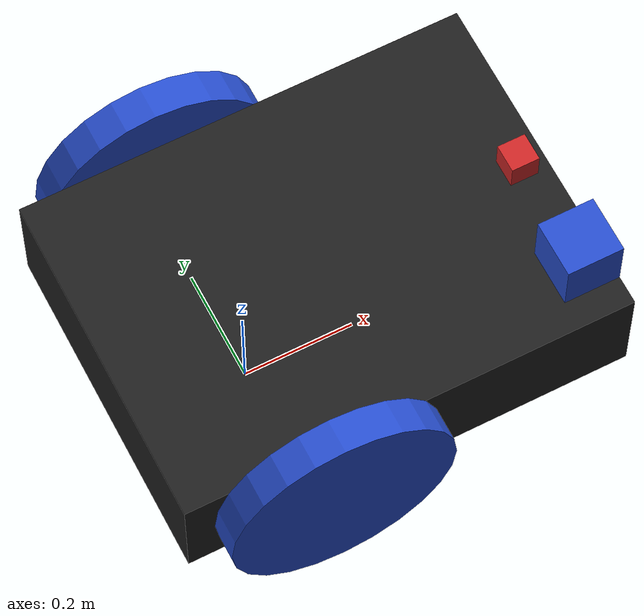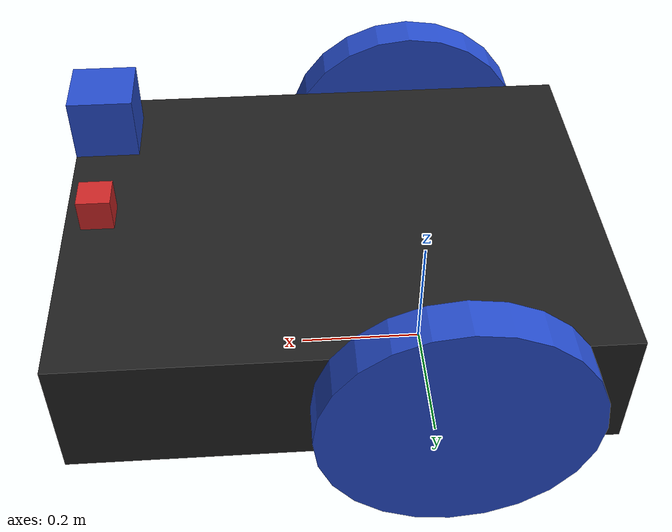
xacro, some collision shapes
<?xml version="1.0" ?>
<robot name="kurobuta" xmlns:xacro="http://www.ros.org/wiki/xacro">

  <!-- Gather xacro:macro of all components of the robot in this file -->

  <!-- Included every xacro files that will be use to create robot -->
  <xacro:include filename="$(find ros_robot_description)/urdf/chassis.xacro" />
  <xacro:include filename="$(find ros_robot_description)/urdf/wheel.xacro" />
  <xacro:include filename="$(find ros_robot_description)/urdf/camera.xacro" />
  <xacro:include filename="$(find ros_robot_description)/urdf/lidar.xacro" />
  <xacro:include filename="$(find ros_robot_description)/urdf/kurobuta.gazebo" />

  <xacro:link_chassis name="link_chassis"/>

  <xacro:link_wheel name="link_right_wheel" />
  <xacro:joint_wheel name="joint_right_wheel" child="link_right_wheel" origin_xyz="0 -0.33 0" />

  <xacro:link_wheel name="link_left_wheel" />
  <xacro:joint_wheel name="joint_left_wheel" child="link_left_wheel" origin_xyz="0 0.33 0" />

  <xacro:camera name="camera.xacro"/>
  <xacro:lidar name="lidar.xacro"/>

</robot>

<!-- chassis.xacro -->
<robot name="chassis" xmlns:xacro="http://www.ros.org/wiki/xacro">
    <!-- Included the Properties file -->

    <xacro:include filename="$(find ros_robot_description)/urdf/inertia.xacro"/>
    <xacro:include filename="$(find ros_robot_description)/urdf/properties.xacro"/>

   <!-- Defined Link & Joint of the Chassis(Body) in Xacro:Macro   -->
    <xacro:macro name="link_chassis" params="name">
        <!-- Defined Base Link and Joint & Transform to the Chassis -->
        <link name="base_wheel"/>
        <joint name="based_wheel_to_base_link" type="fixed">
            <parent link="base_wheel"/>
            <child link="${name}"/>
            <origin rpy="0.0 0.0 0.0" xyz="0.0 0.0 ${floortobase}" />
        </joint>

        <link name="${name}">
            <!-- Inertial of the Chassis -->
            <xacro:cuboid_inertial w = "0.8" h = "0.6" d = "0.2" mass = "${mass_chassis}">
            <origin rpy="0 0 0" xyz="0.15 0 0.0"/>
            </xacro:cuboid_inertial>

            <!-- Body of the Robot -->
            <!-- Defined Collision in simulation -->
            <collision name="collision_chassis">
                <origin rpy="0 0 0" xyz="0.15 0.0 0.0"/>
                <geometry>
                    <box size = "0.8 0.6 0.2"/>
                </geometry>
            </collision>
            <!-- Defined visual(what we see in simulation) -->
            <visual>
                <origin rpy="0 0 0" xyz="0.15 0.0 0.0"/>
                <geometry>
                    <box size = "0.8 0.6 0.2"/>
                </geometry>
            </visual>
            <!-- Front Caster -->
            <!-- Defined Collision in simulation -->
            <collision name="caster_front_collision">
                <origin rpy=" 0 0 0" xyz="0.4 0 -0.1"/>
                <geometry>
                    <sphere radius="0.1"/>
                </geometry>
                <surface>
                    <friction>
                    <ode>
                        <mu>0</mu>
                        <mu2>0</mu2>
                        <slip1>1.0</slip1>
                        <slip2>1.0</slip2>
                    </ode>
                    </friction>
                </surface>
            </collision>
            <!-- Defined visual(what we see in simulation) -->
            <visual name="caster_front_visual">
                <origin rpy=" 0 0 0" xyz="0.4 0 -0.1"/>
                <geometry>
                    <sphere radius="0.1"/>
                </geometry>
            </visual>
        </link>

    </xacro:macro>
</robot>

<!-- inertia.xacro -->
<robot xmlns:xacro="http://www.ros.org/wiki/xacro">
    <!-- Defined the inertia and params of inertia of each shape in xacro:macro -->
    <!-- Each inertia come from https://en.wikipedia.org/wiki/List_of_moments_of_inertia#List_of_3D_inertia_tensors -->
    <xacro:macro name="sphere_inertial" params="radius mass *origin">
        <inertial>
            <mass value = "${mass}" />
            <xacro:insert_block name="origin"/>
            <inertia ixx="${0.4*mass*radius*radius}" ixy = "0.0" ixz = "0.0"
            iyy = "${0.4*mass*radius*radius}" iyz = "0.0"
            izz = "${0.4*mass*radius*radius}"/>
        </inertial>
    </xacro:macro>
    <xacro:macro name="cylinder_inertial" params="radius length mass *origin">
        <inertial>
            <mass value = "${mass}" />
            <xacro:insert_block name="origin"/>
            <inertia ixx="${0.08333*mass*((3*radius*radius)+(length*length))}" ixy = "0.0" ixz = "0.0"
            iyy = "${0.08333*mass*((3*radius*radius)+(length*length))}" iyz = "0.0"
            izz = "${0.5*mass*radius*radius}"/>
        </inertial>
    </xacro:macro>
    <xacro:macro name="cuboid_inertial" params="w h d mass *origin">
        <inertial>
            <mass value = "${mass}" />
            <xacro:insert_block name="origin"/>
            <inertia ixx="${0.08333*mass*((h*h)+(d*d))}" ixy = "0.0" ixz = "0.0"
            iyy = "${0.08333*mass*((w*w)+(d*d))}" iyz = "0.0"
            izz = "${0.08333*mass*((w*w)+(h*h))}"/>
        </inertial>
    </xacro:macro>
</robot>

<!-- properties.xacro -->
<robot xmlns:xacro="http://www.ros.org/wiki/xacro">
    <!-- Properties that usually used -->

    <!-- Distance of the Floor to Chassis -->
    <xacro:property name="floortobase" value ="0.2"/>
    <!-- Radius of the wheel in metres -->
    <xacro:property name="wheel_radius" value ="0.2"/>
    <!-- Width of the wheel in metres -->
    <xacro:property name="wheel_length" value ="0.06"/>
    <!-- u maximum -->
    <xacro:property name="u_max" value ="100.0"/>
    <!-- v maximum  -->
    <xacro:property name="v_max" value ="100.0"/>
    <!-- Mass of the Chassis -->
    <xacro:property name="mass_chassis" value ="5.0"/>
    <!-- Mass of the wheel -->
    <xacro:property name="mass_wheel" value ="0.3"/>
    <!-- Size of square 'camera' box -->
    <xacro:property name="camera_link" value="0.05" />

</robot>

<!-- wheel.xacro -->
<robot name="wheel" xmlns:xacro="http://www.ros.org/wiki/xacro">

  <!-- Included the Properties & Inertia xacro file -->
  <xacro:include filename="$(find ros_robot_description)/urdf/inertia.xacro"/>
  <xacro:include filename="$(find ros_robot_description)/urdf/properties.xacro"/>

  <!-- Defined Link of wheel in Xacro:Macro -->
  <xacro:macro name="link_wheel" params="name">

    <gazebo>
      <plugin name= "gazebo_ros_control" filename="libgazebo_ros_control.so">
        <robotNamespace>/kurobuta</robotNamespace>
      </plugin>
    </gazebo>

    <link name="${name}">
        <!-- Inertia of the cylinder wheel call from the inertia.xacro -->
        <xacro:cylinder_inertial radius = "${wheel_radius}" length = "${wheel_length}" mass = "${mass_wheel}">
        <origin rpy="0.0 1.5707 1.5707" xyz="0.0 0.0 0.0"/>
        </xacro:cylinder_inertial>
        <!-- Defined Collision of the wheel in simulation -->
        <collision name="${name}_collision">
          <origin rpy="0 1.5707 1.5707" xyz="0 0 0"/>
          <geometry>
            <cylinder length="${wheel_length}" radius="${wheel_radius}"/>
          </geometry>
        </collision>
        <!-- Defined visual(what we see in simulation) -->
        <visual name="${name}_visual">
          <origin rpy="0 1.5707 1.5707" xyz="0 0 0"/>
          <geometry>
            <cylinder length="${wheel_length}" radius="${wheel_radius}"/>
          </geometry>
        </visual>
    </link>
  </xacro:macro>

  <!-- Defined Joint in Xacro:Macro with the param "name, child, origin_xyz(transformation
      from parent link)" for seperate left right wheel -->
  <xacro:macro name="joint_wheel" params="name child origin_xyz">
    <joint name="${name}" type="continuous">
      <origin rpy="0 0 0" xyz="${origin_xyz}"/>
      <child link="${child}"/>
      <parent link="link_chassis"/>
      <axis rpy="0 0 0" xyz="0 1 0"/>
      <limit effort="${u_max}" velocity="${v_max}"/>
      <joint_properties damping="1.0" friction="1.0"/>
    </joint>

  <!-- Add the Transmission and the Actuators to the wheel -->
    <transmission name="${name}_transmission">
      <type>transmission_interface/SimpleTransmission</type>
      <joint name="${name}">
        <hardwareInterface>hardware_interface/EffortJointInterface</hardwareInterface>
      </joint>
      <actuator name="${name}_wheel_motor">
        <hardwareInterface>hardware_interface/EffortJointInterface</hardwareInterface>
        <mechanicalReduction>1</mechanicalReduction>
      </actuator>
    </transmission>
  </xacro:macro>

</robot>

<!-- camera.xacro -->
<robot xmlns:xacro="http://www.ros.org/wiki/xacro" name="camera">

    <!-- Included the Properties file -->
    <xacro:include filename="$(find ros_robot_description)/urdf/properties.xacro"/>

    <!-- Defined Link & Joint of the Camera in Xacro:Macro   -->
    <xacro:macro name="camera" params="name">
        <joint name="camera_joint" type="fixed">
            <!-- Default of the xyz axis -->
            <axis xyz="0 1 0" />
            <!-- Position of the Camera you want (Transfrom from the Parent Link) -->
            <origin xyz="0.5 0 0.125" rpy="0 0 0"/>
            <parent link="link_chassis"/>
            <child link="link_camera"/>
        </joint>

        <link name="link_camera">
            <!-- Defined Collision in simulation -->
            <collision>
                <origin xyz="0 0 0" rpy="0 0 0"/>
                <geometry>
                    <box size="${camera_link} ${camera_link} ${camera_link}"/>
                </geometry>
            </collision>
            <!-- Defined visual(what we see in simulation) -->
            <visual>
                <origin xyz="0 0 0" rpy="0 0 0"/>
                <geometry>
                    <box size="${camera_link} ${camera_link} ${camera_link}"/>
                </geometry>
            </visual>
            <!-- Inertial of the camera -->
            <inertial>
                <mass value="1e-5" />
                <origin xyz="0 0 0" rpy="0 0 0"/>
                <inertia ixx="1e-6" ixy="0" ixz="0" iyy="1e-6" iyz="0" izz="1e-6" />
            </inertial>
        </link>
    </xacro:macro>
</robot>

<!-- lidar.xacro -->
<robot xmlns:xacro="http://www.ros.org/wiki/xacro" name="lidar">

    <!-- Defined Link & Joint of the Lidar in Xacro:Macro  -->

    <xacro:macro name="lidar" params="name">
        <joint name="hokuyo_joint" type="fixed">
            <!-- Default of the xyz axis -->
            <axis xyz="0 1 0" />
            <!-- Position of the Lidar you want (Transfrom from the Parent Link) -->
            <origin xyz="0.5 -0.2 0.15" rpy="0 0 0"/>
            <parent link="link_chassis"/>
            <child link="link_hokuyo"/>
        </joint>

        <link name="link_hokuyo">
            <!-- Defined Collision in simulation -->
            <collision>
                <origin xyz="0 0 0" rpy="0 0 0"/>
                <geometry>
                    <box size="0.1 0.1 0.1"/>
                </geometry>
            </collision>
            <!-- Defined visual(what we see in simulation) -->
            <visual>
                <origin xyz="0 0 0" rpy="0 0 0"/>
                <geometry>
                    <!-- Import the mesh file by uncomment under this -->
                    <mesh filename="package://ros_robot_description/meshes/hokuyo.dae"/>
                </geometry>
            </visual>
            <!-- Inertial of the camera -->
            <inertial>
                <mass value="1e-5" />
                <origin xyz="0 0 0" rpy="0 0 0"/>
                <inertia ixx="1e-6" ixy="0" ixz="0" iyy="1e-6" iyz="0" izz="1e-6" />
            </inertial>
        </link>
    </xacro:macro>
</robot>
